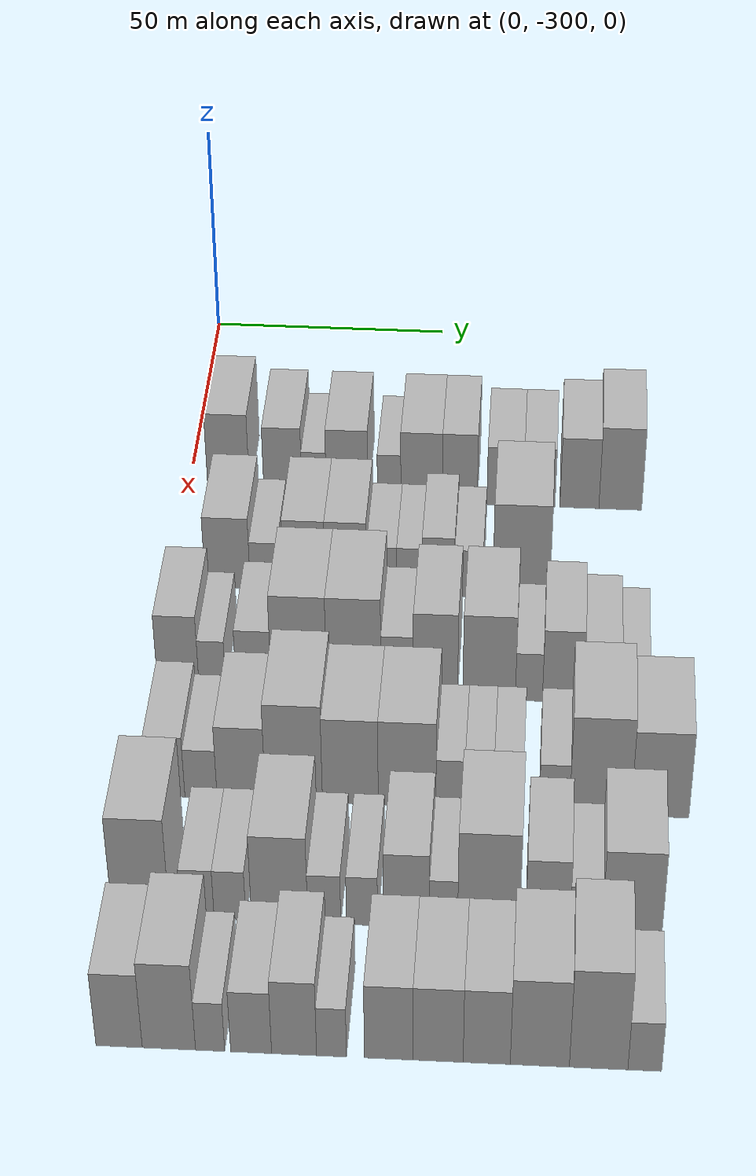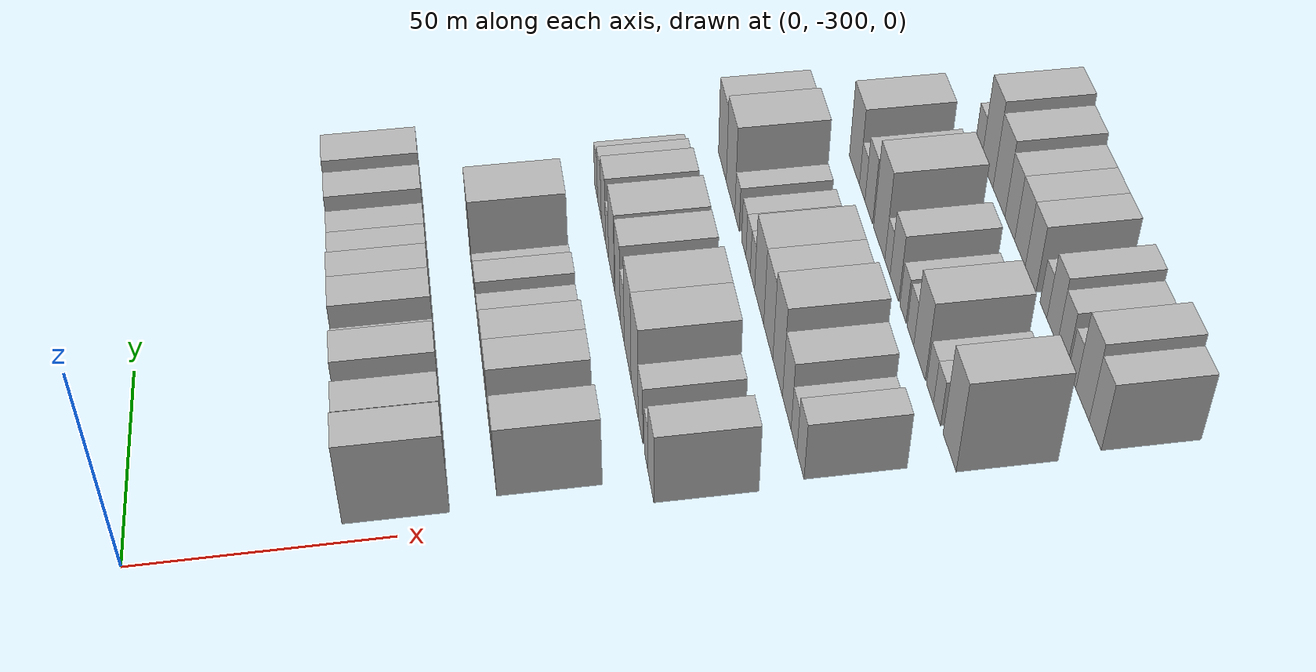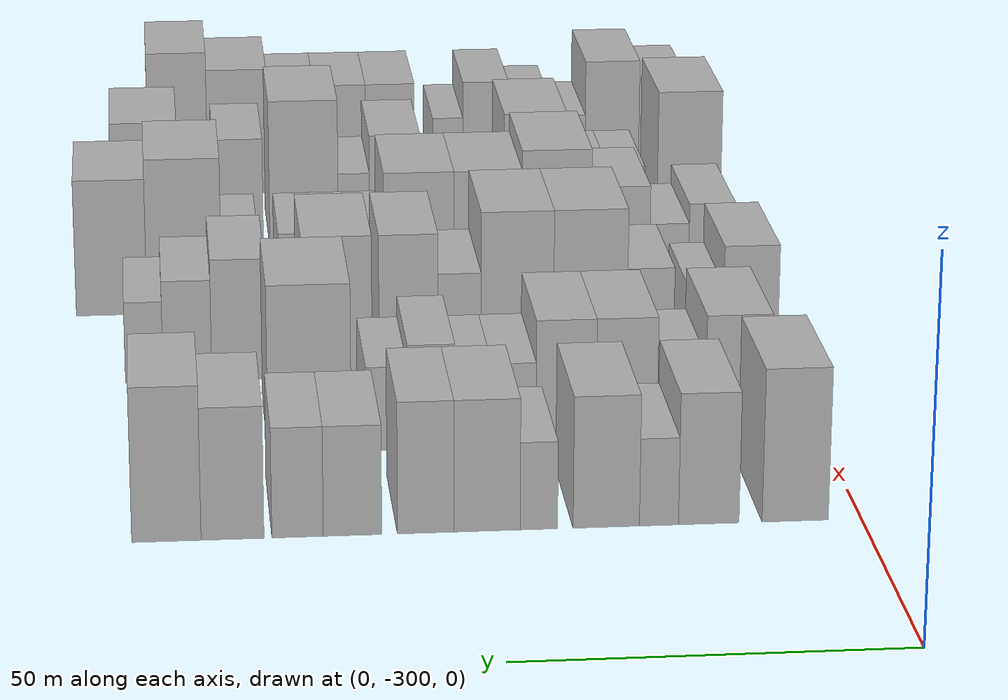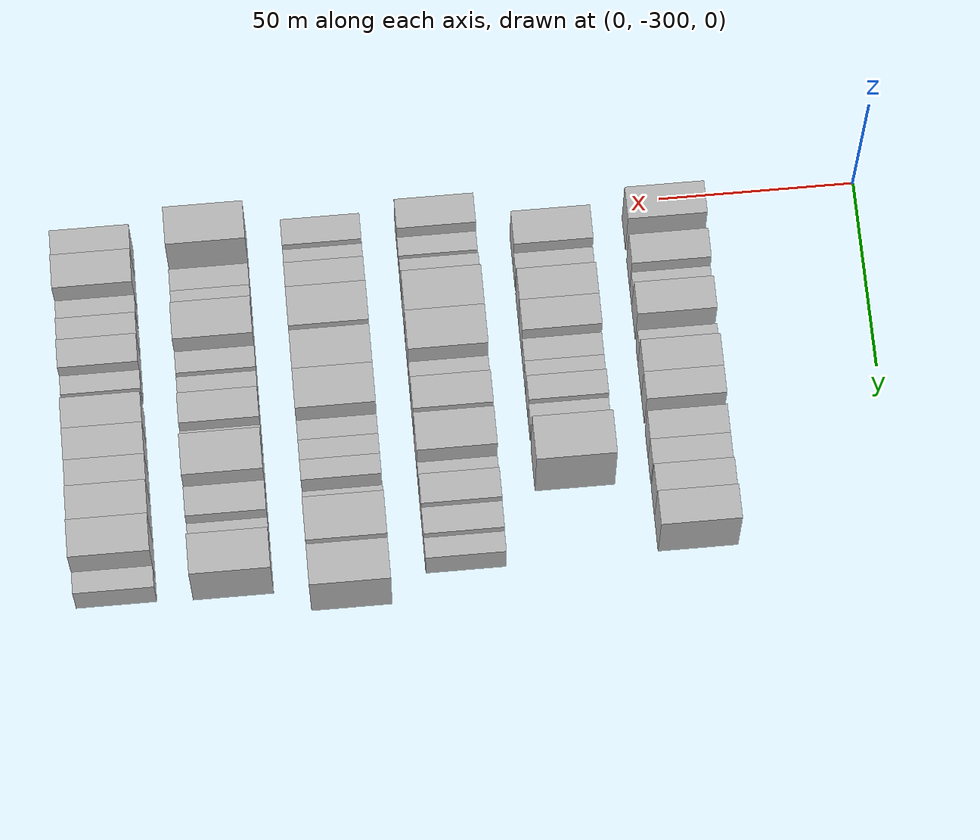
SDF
<sdf version="1.6">
 <world name="default">
  <model name="building_25">
   <static>1</static>
   <pose>50.0000 -291.3003 0 0.000000 0.000000 0.000000</pose>
   <link name="link">
    <pose>0 0 10.50 0 0 0</pose>
    <collision name="collision"><geometry><box><size>20.0000 8.6285 21.0000</size></box></geometry></collision>
    <visual name="visual">
     <cast_shadows>0</cast_shadows>
     <geometry><box><size>20.0000 8.6285 21.0000</size></box></geometry>
     <material>
      <script>
       <uri>model://HANNAS_wall/materials/scripts</uri>
       <uri>model://HANNAS_wall/materials/textures</uri>
       <name>vrc/HANNAS_wall</name>
      </script>
     </material>
    </visual>
   </link>
  </model>
  <model name="building_26">
   <static>1</static>
   <pose>50.0000 -280.0551 0 0.000000 0.000000 0.000000</pose>
   <link name="link">
    <pose>0 0 9.00 0 0 0</pose>
    <collision name="collision"><geometry><box><size>20.0000 7.8619 18.0000</size></box></geometry></collision>
    <visual name="visual">
     <cast_shadows>0</cast_shadows>
     <geometry><box><size>20.0000 7.8619 18.0000</size></box></geometry>
     <material>
      <script>
       <uri>model://HANNAS_wall/materials/scripts</uri>
       <uri>model://HANNAS_wall/materials/textures</uri>
       <name>vrc/HANNAS_wall</name>
      </script>
     </material>
    </visual>
   </link>
  </model>
  <model name="building_27">
   <static>1</static>
   <pose>50.0000 -273.5944 0 0.000000 0.000000 0.000000</pose>
   <link name="link">
    <pose>0 0 6.00 0 0 0</pose>
    <collision name="collision"><geometry><box><size>20.0000 5.0594 12.0000</size></box></geometry></collision>
    <visual name="visual">
     <cast_shadows>0</cast_shadows>
     <geometry><box><size>20.0000 5.0594 12.0000</size></box></geometry>
     <material>
      <script>
       <uri>model://HANNAS_wall/materials/scripts</uri>
       <uri>model://HANNAS_wall/materials/textures</uri>
       <name>vrc/HANNAS_wall</name>
      </script>
     </material>
    </visual>
   </link>
  </model>
  <model name="building_28">
   <static>1</static>
   <pose>50.0000 -266.7744 0 0.000000 0.000000 0.000000</pose>
   <link name="link">
    <pose>0 0 9.00 0 0 0</pose>
    <collision name="collision"><geometry><box><size>20.0000 8.5807 18.0000</size></box></geometry></collision>
    <visual name="visual">
     <cast_shadows>0</cast_shadows>
     <geometry><box><size>20.0000 8.5807 18.0000</size></box></geometry>
     <material>
      <script>
       <uri>model://HANNAS_wall/materials/scripts</uri>
       <uri>model://HANNAS_wall/materials/textures</uri>
       <name>vrc/HANNAS_wall</name>
      </script>
     </material>
    </visual>
   </link>
  </model>
  <model name="building_29">
   <static>1</static>
   <pose>50.0000 -258.0686 0 0.000000 0.000000 0.000000</pose>
   <link name="link">
    <pose>0 0 6.00 0 0 0</pose>
    <collision name="collision"><geometry><box><size>20.0000 4.8308 12.0000</size></box></geometry></collision>
    <visual name="visual">
     <cast_shadows>0</cast_shadows>
     <geometry><box><size>20.0000 4.8308 12.0000</size></box></geometry>
     <material>
      <script>
       <uri>model://HANNAS_wall/materials/scripts</uri>
       <uri>model://HANNAS_wall/materials/textures</uri>
       <name>vrc/HANNAS_wall</name>
      </script>
     </material>
    </visual>
   </link>
  </model>
  <model name="building_30">
   <static>1</static>
   <pose>50.0000 -251.3869 0 0.000000 0.000000 0.000000</pose>
   <link name="link">
    <pose>0 0 9.00 0 0 0</pose>
    <collision name="collision"><geometry><box><size>20.0000 8.5327 18.0000</size></box></geometry></collision>
    <visual name="visual">
     <cast_shadows>0</cast_shadows>
     <geometry><box><size>20.0000 8.5327 18.0000</size></box></geometry>
     <material>
      <script>
       <uri>model://HANNAS_wall/materials/scripts</uri>
       <uri>model://HANNAS_wall/materials/textures</uri>
       <name>vrc/HANNAS_wall</name>
      </script>
     </material>
    </visual>
   </link>
  </model>
  <model name="building_31">
   <static>1</static>
   <pose>50.0000 -243.5036 0 0.000000 0.000000 0.000000</pose>
   <link name="link">
    <pose>0 0 9.00 0 0 0</pose>
    <collision name="collision"><geometry><box><size>20.0000 7.2339 18.0000</size></box></geometry></collision>
    <visual name="visual">
     <cast_shadows>0</cast_shadows>
     <geometry><box><size>20.0000 7.2339 18.0000</size></box></geometry>
     <material>
      <script>
       <uri>model://HANNAS_wall/materials/scripts</uri>
       <uri>model://HANNAS_wall/materials/textures</uri>
       <name>vrc/HANNAS_wall</name>
      </script>
     </material>
    </visual>
   </link>
  </model>
  <model name="building_32">
   <static>1</static>
   <pose>50.0000 -234.1505 0 0.000000 0.000000 0.000000</pose>
   <link name="link">
    <pose>0 0 7.50 0 0 0</pose>
    <collision name="collision"><geometry><box><size>20.0000 7.4723 15.0000</size></box></geometry></collision>
    <visual name="visual">
     <cast_shadows>0</cast_shadows>
     <geometry><box><size>20.0000 7.4723 15.0000</size></box></geometry>
     <material>
      <script>
       <uri>model://HANNAS_wall/materials/scripts</uri>
       <uri>model://HANNAS_wall/materials/textures</uri>
       <name>vrc/HANNAS_wall</name>
      </script>
     </material>
    </visual>
   </link>
  </model>
  <model name="building_33">
   <static>1</static>
   <pose>50.0000 -227.1314 0 0.000000 0.000000 0.000000</pose>
   <link name="link">
    <pose>0 0 7.50 0 0 0</pose>
    <collision name="collision"><geometry><box><size>20.0000 6.5659 15.0000</size></box></geometry></collision>
    <visual name="visual">
     <cast_shadows>0</cast_shadows>
     <geometry><box><size>20.0000 6.5659 15.0000</size></box></geometry>
     <material>
      <script>
       <uri>model://HANNAS_wall/materials/scripts</uri>
       <uri>model://HANNAS_wall/materials/textures</uri>
       <name>vrc/HANNAS_wall</name>
      </script>
     </material>
    </visual>
   </link>
  </model>
  <model name="building_34">
   <static>1</static>
   <pose>50.0000 -218.8408 0 0.000000 0.000000 0.000000</pose>
   <link name="link">
    <pose>0 0 9.00 0 0 0</pose>
    <collision name="collision"><geometry><box><size>20.0000 8.0153 18.0000</size></box></geometry></collision>
    <visual name="visual">
     <cast_shadows>0</cast_shadows>
     <geometry><box><size>20.0000 8.0153 18.0000</size></box></geometry>
     <material>
      <script>
       <uri>model://HANNAS_wall/materials/scripts</uri>
       <uri>model://HANNAS_wall/materials/textures</uri>
       <name>vrc/HANNAS_wall</name>
      </script>
     </material>
    </visual>
   </link>
  </model>
  <model name="building_35">
   <static>1</static>
   <pose>50.0000 -210.4350 0 0.000000 0.000000 0.000000</pose>
   <link name="link">
    <pose>0 0 10.50 0 0 0</pose>
    <collision name="collision"><geometry><box><size>20.0000 8.7961 21.0000</size></box></geometry></collision>
    <visual name="visual">
     <cast_shadows>0</cast_shadows>
     <geometry><box><size>20.0000 8.7961 21.0000</size></box></geometry>
     <material>
      <script>
       <uri>model://HANNAS_wall/materials/scripts</uri>
       <uri>model://HANNAS_wall/materials/textures</uri>
       <name>vrc/HANNAS_wall</name>
      </script>
     </material>
    </visual>
   </link>
  </model>
  <model name="building_140">
   <static>1</static>
   <pose>79.0000 -288.3581 0 0.000000 0.000000 0.000000</pose>
   <link name="link">
    <pose>0 0 9.00 0 0 0</pose>
    <collision name="collision"><geometry><box><size>20.0000 8.9788 18.0000</size></box></geometry></collision>
    <visual name="visual">
     <cast_shadows>0</cast_shadows>
     <geometry><box><size>20.0000 8.9788 18.0000</size></box></geometry>
     <material>
      <script>
       <uri>model://HANNAS_wall/materials/scripts</uri>
       <uri>model://HANNAS_wall/materials/textures</uri>
       <name>vrc/HANNAS_wall</name>
      </script>
     </material>
    </visual>
   </link>
  </model>
  <model name="building_141">
   <static>1</static>
   <pose>79.0000 -281.0769 0 0.000000 0.000000 0.000000</pose>
   <link name="link">
    <pose>0 0 6.00 0 0 0</pose>
    <collision name="collision"><geometry><box><size>20.0000 5.5837 12.0000</size></box></geometry></collision>
    <visual name="visual">
     <cast_shadows>0</cast_shadows>
     <geometry><box><size>20.0000 5.5837 12.0000</size></box></geometry>
     <material>
      <script>
       <uri>model://HANNAS_wall/materials/scripts</uri>
       <uri>model://HANNAS_wall/materials/textures</uri>
       <name>vrc/HANNAS_wall</name>
      </script>
     </material>
    </visual>
   </link>
  </model>
  <model name="building_142">
   <static>1</static>
   <pose>79.0000 -273.1082 0 0.000000 0.000000 0.000000</pose>
   <link name="link">
    <pose>0 0 9.00 0 0 0</pose>
    <collision name="collision"><geometry><box><size>20.0000 8.3537 18.0000</size></box></geometry></collision>
    <visual name="visual">
     <cast_shadows>0</cast_shadows>
     <geometry><box><size>20.0000 8.3537 18.0000</size></box></geometry>
     <material>
      <script>
       <uri>model://HANNAS_wall/materials/scripts</uri>
       <uri>model://HANNAS_wall/materials/textures</uri>
       <name>vrc/HANNAS_wall</name>
      </script>
     </material>
    </visual>
   </link>
  </model>
  <model name="building_143">
   <static>1</static>
   <pose>79.0000 -264.8440 0 0.000000 0.000000 0.000000</pose>
   <link name="link">
    <pose>0 0 9.00 0 0 0</pose>
    <collision name="collision"><geometry><box><size>20.0000 8.1747 18.0000</size></box></geometry></collision>
    <visual name="visual">
     <cast_shadows>0</cast_shadows>
     <geometry><box><size>20.0000 8.1747 18.0000</size></box></geometry>
     <material>
      <script>
       <uri>model://HANNAS_wall/materials/scripts</uri>
       <uri>model://HANNAS_wall/materials/textures</uri>
       <name>vrc/HANNAS_wall</name>
      </script>
     </material>
    </visual>
   </link>
  </model>
  <model name="building_144">
   <static>1</static>
   <pose>79.0000 -257.7608 0 0.000000 0.000000 0.000000</pose>
   <link name="link">
    <pose>0 0 6.00 0 0 0</pose>
    <collision name="collision"><geometry><box><size>20.0000 5.9917 12.0000</size></box></geometry></collision>
    <visual name="visual">
     <cast_shadows>0</cast_shadows>
     <geometry><box><size>20.0000 5.9917 12.0000</size></box></geometry>
     <material>
      <script>
       <uri>model://HANNAS_wall/materials/scripts</uri>
       <uri>model://HANNAS_wall/materials/textures</uri>
       <name>vrc/HANNAS_wall</name>
      </script>
     </material>
    </visual>
   </link>
  </model>
  <model name="building_145">
   <static>1</static>
   <pose>79.0000 -252.2550 0 0.000000 0.000000 0.000000</pose>
   <link name="link">
    <pose>0 0 6.00 0 0 0</pose>
    <collision name="collision"><geometry><box><size>20.0000 5.0199 12.0000</size></box></geometry></collision>
    <visual name="visual">
     <cast_shadows>0</cast_shadows>
     <geometry><box><size>20.0000 5.0199 12.0000</size></box></geometry>
     <material>
      <script>
       <uri>model://HANNAS_wall/materials/scripts</uri>
       <uri>model://HANNAS_wall/materials/textures</uri>
       <name>vrc/HANNAS_wall</name>
      </script>
     </material>
    </visual>
   </link>
  </model>
  <model name="building_146">
   <static>1</static>
   <pose>79.0000 -246.5415 0 0.000000 0.000000 0.000000</pose>
   <link name="link">
    <pose>0 0 7.50 0 0 0</pose>
    <collision name="collision"><geometry><box><size>20.0000 6.4070 15.0000</size></box></geometry></collision>
    <visual name="visual">
     <cast_shadows>0</cast_shadows>
     <geometry><box><size>20.0000 6.4070 15.0000</size></box></geometry>
     <material>
      <script>
       <uri>model://HANNAS_wall/materials/scripts</uri>
       <uri>model://HANNAS_wall/materials/textures</uri>
       <name>vrc/HANNAS_wall</name>
      </script>
     </material>
    </visual>
   </link>
  </model>
  <model name="building_147">
   <static>1</static>
   <pose>79.0000 -240.5324 0 0.000000 0.000000 0.000000</pose>
   <link name="link">
    <pose>0 0 6.00 0 0 0</pose>
    <collision name="collision"><geometry><box><size>20.0000 5.6112 12.0000</size></box></geometry></collision>
    <visual name="visual">
     <cast_shadows>0</cast_shadows>
     <geometry><box><size>20.0000 5.6112 12.0000</size></box></geometry>
     <material>
      <script>
       <uri>model://HANNAS_wall/materials/scripts</uri>
       <uri>model://HANNAS_wall/materials/textures</uri>
       <name>vrc/HANNAS_wall</name>
      </script>
     </material>
    </visual>
   </link>
  </model>
  <model name="building_148">
   <static>1</static>
   <pose>79.0000 -230.1031 0 0.000000 0.000000 0.000000</pose>
   <link name="link">
    <pose>0 0 12.00 0 0 0</pose>
    <collision name="collision"><geometry><box><size>20.0000 11.2473 24.0000</size></box></geometry></collision>
    <visual name="visual">
     <cast_shadows>0</cast_shadows>
     <geometry><box><size>20.0000 11.2473 24.0000</size></box></geometry>
     <material>
      <script>
       <uri>model://HANNAS_wall/materials/scripts</uri>
       <uri>model://HANNAS_wall/materials/textures</uri>
       <name>vrc/HANNAS_wall</name>
      </script>
     </material>
    </visual>
   </link>
  </model>
  <model name="building_255">
   <static>1</static>
   <pose>108.0000 -294.6902 0 0.000000 0.000000 0.000000</pose>
   <link name="link">
    <pose>0 0 9.00 0 0 0</pose>
    <collision name="collision"><geometry><box><size>20.0000 7.9438 18.0000</size></box></geometry></collision>
    <visual name="visual">
     <cast_shadows>0</cast_shadows>
     <geometry><box><size>20.0000 7.9438 18.0000</size></box></geometry>
     <material>
      <script>
       <uri>model://HANNAS_wall/materials/scripts</uri>
       <uri>model://HANNAS_wall/materials/textures</uri>
       <name>vrc/HANNAS_wall</name>
      </script>
     </material>
    </visual>
   </link>
  </model>
  <model name="building_256">
   <static>1</static>
   <pose>108.0000 -288.1647 0 0.000000 0.000000 0.000000</pose>
   <link name="link">
    <pose>0 0 6.00 0 0 0</pose>
    <collision name="collision"><geometry><box><size>20.0000 5.1073 12.0000</size></box></geometry></collision>
    <visual name="visual">
     <cast_shadows>0</cast_shadows>
     <geometry><box><size>20.0000 5.1073 12.0000</size></box></geometry>
     <material>
      <script>
       <uri>model://HANNAS_wall/materials/scripts</uri>
       <uri>model://HANNAS_wall/materials/textures</uri>
       <name>vrc/HANNAS_wall</name>
      </script>
     </material>
    </visual>
   </link>
  </model>
  <model name="building_257">
   <static>1</static>
   <pose>108.0000 -280.2494 0 0.000000 0.000000 0.000000</pose>
   <link name="link">
    <pose>0 0 7.50 0 0 0</pose>
    <collision name="collision"><geometry><box><size>20.0000 6.7231 15.0000</size></box></geometry></collision>
    <visual name="visual">
     <cast_shadows>0</cast_shadows>
     <geometry><box><size>20.0000 6.7231 15.0000</size></box></geometry>
     <material>
      <script>
       <uri>model://HANNAS_wall/materials/scripts</uri>
       <uri>model://HANNAS_wall/materials/textures</uri>
       <name>vrc/HANNAS_wall</name>
      </script>
     </material>
    </visual>
   </link>
  </model>
  <model name="building_258">
   <static>1</static>
   <pose>108.0000 -271.6056 0 0.000000 0.000000 0.000000</pose>
   <link name="link">
    <pose>0 0 12.00 0 0 0</pose>
    <collision name="collision"><geometry><box><size>20.0000 10.5645 24.0000</size></box></geometry></collision>
    <visual name="visual">
     <cast_shadows>0</cast_shadows>
     <geometry><box><size>20.0000 10.5645 24.0000</size></box></geometry>
     <material>
      <script>
       <uri>model://HANNAS_wall/materials/scripts</uri>
       <uri>model://HANNAS_wall/materials/textures</uri>
       <name>vrc/HANNAS_wall</name>
      </script>
     </material>
    </visual>
   </link>
  </model>
  <model name="building_259">
   <static>1</static>
   <pose>108.0000 -261.1431 0 0.000000 0.000000 0.000000</pose>
   <link name="link">
    <pose>0 0 12.00 0 0 0</pose>
    <collision name="collision"><geometry><box><size>20.0000 10.3607 24.0000</size></box></geometry></collision>
    <visual name="visual">
     <cast_shadows>0</cast_shadows>
     <geometry><box><size>20.0000 10.3607 24.0000</size></box></geometry>
     <material>
      <script>
       <uri>model://HANNAS_wall/materials/scripts</uri>
       <uri>model://HANNAS_wall/materials/textures</uri>
       <name>vrc/HANNAS_wall</name>
      </script>
     </material>
    </visual>
   </link>
  </model>
  <model name="building_260">
   <static>1</static>
   <pose>108.0000 -252.8995 0 0.000000 0.000000 0.000000</pose>
   <link name="link">
    <pose>0 0 7.50 0 0 0</pose>
    <collision name="collision"><geometry><box><size>20.0000 6.1264 15.0000</size></box></geometry></collision>
    <visual name="visual">
     <cast_shadows>0</cast_shadows>
     <geometry><box><size>20.0000 6.1264 15.0000</size></box></geometry>
     <material>
      <script>
       <uri>model://HANNAS_wall/materials/scripts</uri>
       <uri>model://HANNAS_wall/materials/textures</uri>
       <name>vrc/HANNAS_wall</name>
      </script>
     </material>
    </visual>
   </link>
  </model>
  <model name="building_261">
   <static>1</static>
   <pose>108.0000 -245.6276 0 0.000000 0.000000 0.000000</pose>
   <link name="link">
    <pose>0 0 10.50 0 0 0</pose>
    <collision name="collision"><geometry><box><size>20.0000 8.4173 21.0000</size></box></geometry></collision>
    <visual name="visual">
     <cast_shadows>0</cast_shadows>
     <geometry><box><size>20.0000 8.4173 21.0000</size></box></geometry>
     <material>
      <script>
       <uri>model://HANNAS_wall/materials/scripts</uri>
       <uri>model://HANNAS_wall/materials/textures</uri>
       <name>vrc/HANNAS_wall</name>
      </script>
     </material>
    </visual>
   </link>
  </model>
  <model name="building_262">
   <static>1</static>
   <pose>108.0000 -235.4353 0 0.000000 0.000000 0.000000</pose>
   <link name="link">
    <pose>0 0 10.50 0 0 0</pose>
    <collision name="collision"><geometry><box><size>20.0000 9.9673 21.0000</size></box></geometry></collision>
    <visual name="visual">
     <cast_shadows>0</cast_shadows>
     <geometry><box><size>20.0000 9.9673 21.0000</size></box></geometry>
     <material>
      <script>
       <uri>model://HANNAS_wall/materials/scripts</uri>
       <uri>model://HANNAS_wall/materials/textures</uri>
       <name>vrc/HANNAS_wall</name>
      </script>
     </material>
    </visual>
   </link>
  </model>
  <model name="building_263">
   <static>1</static>
   <pose>108.0000 -227.8886 0 0.000000 0.000000 0.000000</pose>
   <link name="link">
    <pose>0 0 6.00 0 0 0</pose>
    <collision name="collision"><geometry><box><size>20.0000 5.1261 12.0000</size></box></geometry></collision>
    <visual name="visual">
     <cast_shadows>0</cast_shadows>
     <geometry><box><size>20.0000 5.1261 12.0000</size></box></geometry>
     <material>
      <script>
       <uri>model://HANNAS_wall/materials/scripts</uri>
       <uri>model://HANNAS_wall/materials/textures</uri>
       <name>vrc/HANNAS_wall</name>
      </script>
     </material>
    </visual>
   </link>
  </model>
  <model name="building_264">
   <static>1</static>
   <pose>108.0000 -221.4783 0 0.000000 0.000000 0.000000</pose>
   <link name="link">
    <pose>0 0 9.00 0 0 0</pose>
    <collision name="collision"><geometry><box><size>20.0000 7.6946 18.0000</size></box></geometry></collision>
    <visual name="visual">
     <cast_shadows>0</cast_shadows>
     <geometry><box><size>20.0000 7.6946 18.0000</size></box></geometry>
     <material>
      <script>
       <uri>model://HANNAS_wall/materials/scripts</uri>
       <uri>model://HANNAS_wall/materials/textures</uri>
       <name>vrc/HANNAS_wall</name>
      </script>
     </material>
    </visual>
   </link>
  </model>
  <model name="building_265">
   <static>1</static>
   <pose>108.0000 -214.1854 0 0.000000 0.000000 0.000000</pose>
   <link name="link">
    <pose>0 0 7.50 0 0 0</pose>
    <collision name="collision"><geometry><box><size>20.0000 6.8912 15.0000</size></box></geometry></collision>
    <visual name="visual">
     <cast_shadows>0</cast_shadows>
     <geometry><box><size>20.0000 6.8912 15.0000</size></box></geometry>
     <material>
      <script>
       <uri>model://HANNAS_wall/materials/scripts</uri>
       <uri>model://HANNAS_wall/materials/textures</uri>
       <name>vrc/HANNAS_wall</name>
      </script>
     </material>
    </visual>
   </link>
  </model>
  <model name="building_266">
   <static>1</static>
   <pose>108.0000 -208.0779 0 0.000000 0.000000 0.000000</pose>
   <link name="link">
    <pose>0 0 6.00 0 0 0</pose>
    <collision name="collision"><geometry><box><size>20.0000 5.3237 12.0000</size></box></geometry></collision>
    <visual name="visual">
     <cast_shadows>0</cast_shadows>
     <geometry><box><size>20.0000 5.3237 12.0000</size></box></geometry>
     <material>
      <script>
       <uri>model://HANNAS_wall/materials/scripts</uri>
       <uri>model://HANNAS_wall/materials/textures</uri>
       <name>vrc/HANNAS_wall</name>
      </script>
     </material>
    </visual>
   </link>
  </model>
  <model name="building_369">
   <static>1</static>
   <pose>137.0000 -293.4158 0 0.000000 0.000000 0.000000</pose>
   <link name="link">
    <pose>0 0 7.50 0 0 0</pose>
    <collision name="collision"><geometry><box><size>20.0000 6.9772 15.0000</size></box></geometry></collision>
    <visual name="visual">
     <cast_shadows>0</cast_shadows>
     <geometry><box><size>20.0000 6.9772 15.0000</size></box></geometry>
     <material>
      <script>
       <uri>model://HANNAS_wall/materials/scripts</uri>
       <uri>model://HANNAS_wall/materials/textures</uri>
       <name>vrc/HANNAS_wall</name>
      </script>
     </material>
    </visual>
   </link>
  </model>
  <model name="building_370">
   <static>1</static>
   <pose>137.0000 -286.9778 0 0.000000 0.000000 0.000000</pose>
   <link name="link">
    <pose>0 0 6.00 0 0 0</pose>
    <collision name="collision"><geometry><box><size>20.0000 5.8988 12.0000</size></box></geometry></collision>
    <visual name="visual">
     <cast_shadows>0</cast_shadows>
     <geometry><box><size>20.0000 5.8988 12.0000</size></box></geometry>
     <material>
      <script>
       <uri>model://HANNAS_wall/materials/scripts</uri>
       <uri>model://HANNAS_wall/materials/textures</uri>
       <name>vrc/HANNAS_wall</name>
      </script>
     </material>
    </visual>
   </link>
  </model>
  <model name="building_371">
   <static>1</static>
   <pose>137.0000 -279.5948 0 0.000000 0.000000 0.000000</pose>
   <link name="link">
    <pose>0 0 9.00 0 0 0</pose>
    <collision name="collision"><geometry><box><size>20.0000 8.8674 18.0000</size></box></geometry></collision>
    <visual name="visual">
     <cast_shadows>0</cast_shadows>
     <geometry><box><size>20.0000 8.8674 18.0000</size></box></geometry>
     <material>
      <script>
       <uri>model://HANNAS_wall/materials/scripts</uri>
       <uri>model://HANNAS_wall/materials/textures</uri>
       <name>vrc/HANNAS_wall</name>
      </script>
     </material>
    </visual>
   </link>
  </model>
  <model name="building_372">
   <static>1</static>
   <pose>137.0000 -269.9520 0 0.000000 0.000000 0.000000</pose>
   <link name="link">
    <pose>0 0 12.00 0 0 0</pose>
    <collision name="collision"><geometry><box><size>20.0000 10.4182 24.0000</size></box></geometry></collision>
    <visual name="visual">
     <cast_shadows>0</cast_shadows>
     <geometry><box><size>20.0000 10.4182 24.0000</size></box></geometry>
     <material>
      <script>
       <uri>model://HANNAS_wall/materials/scripts</uri>
       <uri>model://HANNAS_wall/materials/textures</uri>
       <name>vrc/HANNAS_wall</name>
      </script>
     </material>
    </visual>
   </link>
  </model>
  <model name="building_373">
   <static>1</static>
   <pose>137.0000 -259.6535 0 0.000000 0.000000 0.000000</pose>
   <link name="link">
    <pose>0 0 10.50 0 0 0</pose>
    <collision name="collision"><geometry><box><size>20.0000 10.1789 21.0000</size></box></geometry></collision>
    <visual name="visual">
     <cast_shadows>0</cast_shadows>
     <geometry><box><size>20.0000 10.1789 21.0000</size></box></geometry>
     <material>
      <script>
       <uri>model://HANNAS_wall/materials/scripts</uri>
       <uri>model://HANNAS_wall/materials/textures</uri>
       <name>vrc/HANNAS_wall</name>
      </script>
     </material>
    </visual>
   </link>
  </model>
  <model name="building_374">
   <static>1</static>
   <pose>137.0000 -249.3249 0 0.000000 0.000000 0.000000</pose>
   <link name="link">
    <pose>0 0 10.50 0 0 0</pose>
    <collision name="collision"><geometry><box><size>20.0000 10.4783 21.0000</size></box></geometry></collision>
    <visual name="visual">
     <cast_shadows>0</cast_shadows>
     <geometry><box><size>20.0000 10.4783 21.0000</size></box></geometry>
     <material>
      <script>
       <uri>model://HANNAS_wall/materials/scripts</uri>
       <uri>model://HANNAS_wall/materials/textures</uri>
       <name>vrc/HANNAS_wall</name>
      </script>
     </material>
    </visual>
   </link>
  </model>
  <model name="building_375">
   <static>1</static>
   <pose>137.0000 -241.4987 0 0.000000 0.000000 0.000000</pose>
   <link name="link">
    <pose>0 0 6.00 0 0 0</pose>
    <collision name="collision"><geometry><box><size>20.0000 5.1742 12.0000</size></box></geometry></collision>
    <visual name="visual">
     <cast_shadows>0</cast_shadows>
     <geometry><box><size>20.0000 5.1742 12.0000</size></box></geometry>
     <material>
      <script>
       <uri>model://HANNAS_wall/materials/scripts</uri>
       <uri>model://HANNAS_wall/materials/textures</uri>
       <name>vrc/HANNAS_wall</name>
      </script>
     </material>
    </visual>
   </link>
  </model>
  <model name="building_376">
   <static>1</static>
   <pose>137.0000 -236.2942 0 0.000000 0.000000 0.000000</pose>
   <link name="link">
    <pose>0 0 6.00 0 0 0</pose>
    <collision name="collision"><geometry><box><size>20.0000 5.2347 12.0000</size></box></geometry></collision>
    <visual name="visual">
     <cast_shadows>0</cast_shadows>
     <geometry><box><size>20.0000 5.2347 12.0000</size></box></geometry>
     <material>
      <script>
       <uri>model://HANNAS_wall/materials/scripts</uri>
       <uri>model://HANNAS_wall/materials/textures</uri>
       <name>vrc/HANNAS_wall</name>
      </script>
     </material>
    </visual>
   </link>
  </model>
  <model name="building_377">
   <static>1</static>
   <pose>137.0000 -231.0191 0 0.000000 0.000000 0.000000</pose>
   <link name="link">
    <pose>0 0 6.00 0 0 0</pose>
    <collision name="collision"><geometry><box><size>20.0000 5.3155 12.0000</size></box></geometry></collision>
    <visual name="visual">
     <cast_shadows>0</cast_shadows>
     <geometry><box><size>20.0000 5.3155 12.0000</size></box></geometry>
     <material>
      <script>
       <uri>model://HANNAS_wall/materials/scripts</uri>
       <uri>model://HANNAS_wall/materials/textures</uri>
       <name>vrc/HANNAS_wall</name>
      </script>
     </material>
    </visual>
   </link>
  </model>
  <model name="building_378">
   <static>1</static>
   <pose>137.0000 -222.6100 0 0.000000 0.000000 0.000000</pose>
   <link name="link">
    <pose>0 0 6.00 0 0 0</pose>
    <collision name="collision"><geometry><box><size>20.0000 5.5027 12.0000</size></box></geometry></collision>
    <visual name="visual">
     <cast_shadows>0</cast_shadows>
     <geometry><box><size>20.0000 5.5027 12.0000</size></box></geometry>
     <material>
      <script>
       <uri>model://HANNAS_wall/materials/scripts</uri>
       <uri>model://HANNAS_wall/materials/textures</uri>
       <name>vrc/HANNAS_wall</name>
      </script>
     </material>
    </visual>
   </link>
  </model>
  <model name="building_379">
   <static>1</static>
   <pose>137.0000 -214.2834 0 0.000000 0.000000 0.000000</pose>
   <link name="link">
    <pose>0 0 12.00 0 0 0</pose>
    <collision name="collision"><geometry><box><size>20.0000 11.1505 24.0000</size></box></geometry></collision>
    <visual name="visual">
     <cast_shadows>0</cast_shadows>
     <geometry><box><size>20.0000 11.1505 24.0000</size></box></geometry>
     <material>
      <script>
       <uri>model://HANNAS_wall/materials/scripts</uri>
       <uri>model://HANNAS_wall/materials/textures</uri>
       <name>vrc/HANNAS_wall</name>
      </script>
     </material>
    </visual>
   </link>
  </model>
  <model name="building_380">
   <static>1</static>
   <pose>137.0000 -203.4653 0 0.000000 0.000000 0.000000</pose>
   <link name="link">
    <pose>0 0 10.50 0 0 0</pose>
    <collision name="collision"><geometry><box><size>20.0000 10.4857 21.0000</size></box></geometry></collision>
    <visual name="visual">
     <cast_shadows>0</cast_shadows>
     <geometry><box><size>20.0000 10.4857 21.0000</size></box></geometry>
     <material>
      <script>
       <uri>model://HANNAS_wall/materials/scripts</uri>
       <uri>model://HANNAS_wall/materials/textures</uri>
       <name>vrc/HANNAS_wall</name>
      </script>
     </material>
    </visual>
   </link>
  </model>
  <model name="building_480">
   <static>1</static>
   <pose>166.0000 -294.1516 0 0.000000 0.000000 0.000000</pose>
   <link name="link">
    <pose>0 0 12.00 0 0 0</pose>
    <collision name="collision"><geometry><box><size>20.0000 10.0787 24.0000</size></box></geometry></collision>
    <visual name="visual">
     <cast_shadows>0</cast_shadows>
     <geometry><box><size>20.0000 10.0787 24.0000</size></box></geometry>
     <material>
      <script>
       <uri>model://HANNAS_wall/materials/scripts</uri>
       <uri>model://HANNAS_wall/materials/textures</uri>
       <name>vrc/HANNAS_wall</name>
      </script>
     </material>
    </visual>
   </link>
  </model>
  <model name="building_481">
   <static>1</static>
   <pose>166.0000 -284.2027 0 0.000000 0.000000 0.000000</pose>
   <link name="link">
    <pose>0 0 6.00 0 0 0</pose>
    <collision name="collision"><geometry><box><size>20.0000 5.8191 12.0000</size></box></geometry></collision>
    <visual name="visual">
     <cast_shadows>0</cast_shadows>
     <geometry><box><size>20.0000 5.8191 12.0000</size></box></geometry>
     <material>
      <script>
       <uri>model://HANNAS_wall/materials/scripts</uri>
       <uri>model://HANNAS_wall/materials/textures</uri>
       <name>vrc/HANNAS_wall</name>
      </script>
     </material>
    </visual>
   </link>
  </model>
  <model name="building_482">
   <static>1</static>
   <pose>166.0000 -278.5157 0 0.000000 0.000000 0.000000</pose>
   <link name="link">
    <pose>0 0 6.00 0 0 0</pose>
    <collision name="collision"><geometry><box><size>20.0000 5.5551 12.0000</size></box></geometry></collision>
    <visual name="visual">
     <cast_shadows>0</cast_shadows>
     <geometry><box><size>20.0000 5.5551 12.0000</size></box></geometry>
     <material>
      <script>
       <uri>model://HANNAS_wall/materials/scripts</uri>
       <uri>model://HANNAS_wall/materials/textures</uri>
       <name>vrc/HANNAS_wall</name>
      </script>
     </material>
    </visual>
   </link>
  </model>
  <model name="building_483">
   <static>1</static>
   <pose>166.0000 -269.8309 0 0.000000 0.000000 0.000000</pose>
   <link name="link">
    <pose>0 0 10.50 0 0 0</pose>
    <collision name="collision"><geometry><box><size>20.0000 9.8145 21.0000</size></box></geometry></collision>
    <visual name="visual">
     <cast_shadows>0</cast_shadows>
     <geometry><box><size>20.0000 9.8145 21.0000</size></box></geometry>
     <material>
      <script>
       <uri>model://HANNAS_wall/materials/scripts</uri>
       <uri>model://HANNAS_wall/materials/textures</uri>
       <name>vrc/HANNAS_wall</name>
      </script>
     </material>
    </visual>
   </link>
  </model>
  <model name="building_484">
   <static>1</static>
   <pose>166.0000 -262.0506 0 0.000000 0.000000 0.000000</pose>
   <link name="link">
    <pose>0 0 6.00 0 0 0</pose>
    <collision name="collision"><geometry><box><size>20.0000 5.7460 12.0000</size></box></geometry></collision>
    <visual name="visual">
     <cast_shadows>0</cast_shadows>
     <geometry><box><size>20.0000 5.7460 12.0000</size></box></geometry>
     <material>
      <script>
       <uri>model://HANNAS_wall/materials/scripts</uri>
       <uri>model://HANNAS_wall/materials/textures</uri>
       <name>vrc/HANNAS_wall</name>
      </script>
     </material>
    </visual>
   </link>
  </model>
  <model name="building_485">
   <static>1</static>
   <pose>166.0000 -255.4725 0 0.000000 0.000000 0.000000</pose>
   <link name="link">
    <pose>0 0 6.00 0 0 0</pose>
    <collision name="collision"><geometry><box><size>20.0000 5.4102 12.0000</size></box></geometry></collision>
    <visual name="visual">
     <cast_shadows>0</cast_shadows>
     <geometry><box><size>20.0000 5.4102 12.0000</size></box></geometry>
     <material>
      <script>
       <uri>model://HANNAS_wall/materials/scripts</uri>
       <uri>model://HANNAS_wall/materials/textures</uri>
       <name>vrc/HANNAS_wall</name>
      </script>
     </material>
    </visual>
   </link>
  </model>
  <model name="building_486">
   <static>1</static>
   <pose>166.0000 -247.7785 0 0.000000 0.000000 0.000000</pose>
   <link name="link">
    <pose>0 0 9.00 0 0 0</pose>
    <collision name="collision"><geometry><box><size>20.0000 7.9778 18.0000</size></box></geometry></collision>
    <visual name="visual">
     <cast_shadows>0</cast_shadows>
     <geometry><box><size>20.0000 7.9778 18.0000</size></box></geometry>
     <material>
      <script>
       <uri>model://HANNAS_wall/materials/scripts</uri>
       <uri>model://HANNAS_wall/materials/textures</uri>
       <name>vrc/HANNAS_wall</name>
      </script>
     </material>
    </visual>
   </link>
  </model>
  <model name="building_487">
   <static>1</static>
   <pose>166.0000 -241.3306 0 0.000000 0.000000 0.000000</pose>
   <link name="link">
    <pose>0 0 6.00 0 0 0</pose>
    <collision name="collision"><geometry><box><size>20.0000 4.9182 12.0000</size></box></geometry></collision>
    <visual name="visual">
     <cast_shadows>0</cast_shadows>
     <geometry><box><size>20.0000 4.9182 12.0000</size></box></geometry>
     <material>
      <script>
       <uri>model://HANNAS_wall/materials/scripts</uri>
       <uri>model://HANNAS_wall/materials/textures</uri>
       <name>vrc/HANNAS_wall</name>
      </script>
     </material>
    </visual>
   </link>
  </model>
  <model name="building_488">
   <static>1</static>
   <pose>166.0000 -233.5033 0 0.000000 0.000000 0.000000</pose>
   <link name="link">
    <pose>0 0 12.00 0 0 0</pose>
    <collision name="collision"><geometry><box><size>20.0000 10.7364 24.0000</size></box></geometry></collision>
    <visual name="visual">
     <cast_shadows>0</cast_shadows>
     <geometry><box><size>20.0000 10.7364 24.0000</size></box></geometry>
     <material>
      <script>
       <uri>model://HANNAS_wall/materials/scripts</uri>
       <uri>model://HANNAS_wall/materials/textures</uri>
       <name>vrc/HANNAS_wall</name>
      </script>
     </material>
    </visual>
   </link>
  </model>
  <model name="building_489">
   <static>1</static>
   <pose>166.0000 -223.3212 0 0.000000 0.000000 0.000000</pose>
   <link name="link">
    <pose>0 0 9.00 0 0 0</pose>
    <collision name="collision"><geometry><box><size>20.0000 7.6277 18.0000</size></box></geometry></collision>
    <visual name="visual">
     <cast_shadows>0</cast_shadows>
     <geometry><box><size>20.0000 7.6277 18.0000</size></box></geometry>
     <material>
      <script>
       <uri>model://HANNAS_wall/materials/scripts</uri>
       <uri>model://HANNAS_wall/materials/textures</uri>
       <name>vrc/HANNAS_wall</name>
      </script>
     </material>
    </visual>
   </link>
  </model>
  <model name="building_490">
   <static>1</static>
   <pose>166.0000 -216.7046 0 0.000000 0.000000 0.000000</pose>
   <link name="link">
    <pose>0 0 6.00 0 0 0</pose>
    <collision name="collision"><geometry><box><size>20.0000 5.6055 12.0000</size></box></geometry></collision>
    <visual name="visual">
     <cast_shadows>0</cast_shadows>
     <geometry><box><size>20.0000 5.6055 12.0000</size></box></geometry>
     <material>
      <script>
       <uri>model://HANNAS_wall/materials/scripts</uri>
       <uri>model://HANNAS_wall/materials/textures</uri>
       <name>vrc/HANNAS_wall</name>
      </script>
     </material>
    </visual>
   </link>
  </model>
  <model name="building_491">
   <static>1</static>
   <pose>166.0000 -208.7215 0 0.000000 0.000000 0.000000</pose>
   <link name="link">
    <pose>0 0 10.50 0 0 0</pose>
    <collision name="collision"><geometry><box><size>20.0000 10.3606 21.0000</size></box></geometry></collision>
    <visual name="visual">
     <cast_shadows>0</cast_shadows>
     <geometry><box><size>20.0000 10.3606 21.0000</size></box></geometry>
     <material>
      <script>
       <uri>model://HANNAS_wall/materials/scripts</uri>
       <uri>model://HANNAS_wall/materials/textures</uri>
       <name>vrc/HANNAS_wall</name>
      </script>
     </material>
    </visual>
   </link>
  </model>
  <model name="building_596">
   <static>1</static>
   <pose>195.0000 -293.9093 0 0.000000 0.000000 0.000000</pose>
   <link name="link">
    <pose>0 0 9.00 0 0 0</pose>
    <collision name="collision"><geometry><box><size>20.0000 7.7480 18.0000</size></box></geometry></collision>
    <visual name="visual">
     <cast_shadows>0</cast_shadows>
     <geometry><box><size>20.0000 7.7480 18.0000</size></box></geometry>
     <material>
      <script>
       <uri>model://HANNAS_wall/materials/scripts</uri>
       <uri>model://HANNAS_wall/materials/textures</uri>
       <name>vrc/HANNAS_wall</name>
      </script>
     </material>
    </visual>
   </link>
  </model>
  <model name="building_597">
   <static>1</static>
   <pose>195.0000 -285.5854 0 0.000000 0.000000 0.000000</pose>
   <link name="link">
    <pose>0 0 10.50 0 0 0</pose>
    <collision name="collision"><geometry><box><size>20.0000 8.8998 21.0000</size></box></geometry></collision>
    <visual name="visual">
     <cast_shadows>0</cast_shadows>
     <geometry><box><size>20.0000 8.8998 21.0000</size></box></geometry>
     <material>
      <script>
       <uri>model://HANNAS_wall/materials/scripts</uri>
       <uri>model://HANNAS_wall/materials/textures</uri>
       <name>vrc/HANNAS_wall</name>
      </script>
     </material>
    </visual>
   </link>
  </model>
  <model name="building_598">
   <static>1</static>
   <pose>195.0000 -278.7069 0 0.000000 0.000000 0.000000</pose>
   <link name="link">
    <pose>0 0 6.00 0 0 0</pose>
    <collision name="collision"><geometry><box><size>20.0000 4.8574 12.0000</size></box></geometry></collision>
    <visual name="visual">
     <cast_shadows>0</cast_shadows>
     <geometry><box><size>20.0000 4.8574 12.0000</size></box></geometry>
     <material>
      <script>
       <uri>model://HANNAS_wall/materials/scripts</uri>
       <uri>model://HANNAS_wall/materials/textures</uri>
       <name>vrc/HANNAS_wall</name>
      </script>
     </material>
    </visual>
   </link>
  </model>
  <model name="building_599">
   <static>1</static>
   <pose>195.0000 -271.8673 0 0.000000 0.000000 0.000000</pose>
   <link name="link">
    <pose>0 0 7.50 0 0 0</pose>
    <collision name="collision"><geometry><box><size>20.0000 6.8217 15.0000</size></box></geometry></collision>
    <visual name="visual">
     <cast_shadows>0</cast_shadows>
     <geometry><box><size>20.0000 6.8217 15.0000</size></box></geometry>
     <material>
      <script>
       <uri>model://HANNAS_wall/materials/scripts</uri>
       <uri>model://HANNAS_wall/materials/textures</uri>
       <name>vrc/HANNAS_wall</name>
      </script>
     </material>
    </visual>
   </link>
  </model>
  <model name="building_600">
   <static>1</static>
   <pose>195.0000 -264.7143 0 0.000000 0.000000 0.000000</pose>
   <link name="link">
    <pose>0 0 9.00 0 0 0</pose>
    <collision name="collision"><geometry><box><size>20.0000 7.4843 18.0000</size></box></geometry></collision>
    <visual name="visual">
     <cast_shadows>0</cast_shadows>
     <geometry><box><size>20.0000 7.4843 18.0000</size></box></geometry>
     <material>
      <script>
       <uri>model://HANNAS_wall/materials/scripts</uri>
       <uri>model://HANNAS_wall/materials/textures</uri>
       <name>vrc/HANNAS_wall</name>
      </script>
     </material>
    </visual>
   </link>
  </model>
  <model name="building_601">
   <static>1</static>
   <pose>195.0000 -258.4929 0 0.000000 0.000000 0.000000</pose>
   <link name="link">
    <pose>0 0 6.00 0 0 0</pose>
    <collision name="collision"><geometry><box><size>20.0000 4.9584 12.0000</size></box></geometry></collision>
    <visual name="visual">
     <cast_shadows>0</cast_shadows>
     <geometry><box><size>20.0000 4.9584 12.0000</size></box></geometry>
     <material>
      <script>
       <uri>model://HANNAS_wall/materials/scripts</uri>
       <uri>model://HANNAS_wall/materials/textures</uri>
       <name>vrc/HANNAS_wall</name>
      </script>
     </material>
    </visual>
   </link>
  </model>
  <model name="building_602">
   <static>1</static>
   <pose>195.0000 -249.0027 0 0.000000 0.000000 0.000000</pose>
   <link name="link">
    <pose>0 0 9.00 0 0 0</pose>
    <collision name="collision"><geometry><box><size>20.0000 8.0219 18.0000</size></box></geometry></collision>
    <visual name="visual">
     <cast_shadows>0</cast_shadows>
     <geometry><box><size>20.0000 8.0219 18.0000</size></box></geometry>
     <material>
      <script>
       <uri>model://HANNAS_wall/materials/scripts</uri>
       <uri>model://HANNAS_wall/materials/textures</uri>
       <name>vrc/HANNAS_wall</name>
      </script>
     </material>
    </visual>
   </link>
  </model>
  <model name="building_603">
   <static>1</static>
   <pose>195.0000 -240.8302 0 0.000000 0.000000 0.000000</pose>
   <link name="link">
    <pose>0 0 9.00 0 0 0</pose>
    <collision name="collision"><geometry><box><size>20.0000 8.3232 18.0000</size></box></geometry></collision>
    <visual name="visual">
     <cast_shadows>0</cast_shadows>
     <geometry><box><size>20.0000 8.3232 18.0000</size></box></geometry>
     <material>
      <script>
       <uri>model://HANNAS_wall/materials/scripts</uri>
       <uri>model://HANNAS_wall/materials/textures</uri>
       <name>vrc/HANNAS_wall</name>
      </script>
     </material>
    </visual>
   </link>
  </model>
  <model name="building_604">
   <static>1</static>
   <pose>195.0000 -232.7748 0 0.000000 0.000000 0.000000</pose>
   <link name="link">
    <pose>0 0 9.00 0 0 0</pose>
    <collision name="collision"><geometry><box><size>20.0000 7.7875 18.0000</size></box></geometry></collision>
    <visual name="visual">
     <cast_shadows>0</cast_shadows>
     <geometry><box><size>20.0000 7.7875 18.0000</size></box></geometry>
     <material>
      <script>
       <uri>model://HANNAS_wall/materials/scripts</uri>
       <uri>model://HANNAS_wall/materials/textures</uri>
       <name>vrc/HANNAS_wall</name>
      </script>
     </material>
    </visual>
   </link>
  </model>
  <model name="building_605">
   <static>1</static>
   <pose>195.0000 -224.0078 0 0.000000 0.000000 0.000000</pose>
   <link name="link">
    <pose>0 0 10.50 0 0 0</pose>
    <collision name="collision"><geometry><box><size>20.0000 9.7465 21.0000</size></box></geometry></collision>
    <visual name="visual">
     <cast_shadows>0</cast_shadows>
     <geometry><box><size>20.0000 9.7465 21.0000</size></box></geometry>
     <material>
      <script>
       <uri>model://HANNAS_wall/materials/scripts</uri>
       <uri>model://HANNAS_wall/materials/textures</uri>
       <name>vrc/HANNAS_wall</name>
      </script>
     </material>
    </visual>
   </link>
  </model>
  <model name="building_606">
   <static>1</static>
   <pose>195.0000 -214.3109 0 0.000000 0.000000 0.000000</pose>
   <link name="link">
    <pose>0 0 12.00 0 0 0</pose>
    <collision name="collision"><geometry><box><size>20.0000 9.6471 24.0000</size></box></geometry></collision>
    <visual name="visual">
     <cast_shadows>0</cast_shadows>
     <geometry><box><size>20.0000 9.6471 24.0000</size></box></geometry>
     <material>
      <script>
       <uri>model://HANNAS_wall/materials/scripts</uri>
       <uri>model://HANNAS_wall/materials/textures</uri>
       <name>vrc/HANNAS_wall</name>
      </script>
     </material>
    </visual>
   </link>
  </model>
  <model name="building_607">
   <static>1</static>
   <pose>195.0000 -206.7105 0 0.000000 0.000000 0.000000</pose>
   <link name="link">
    <pose>0 0 6.00 0 0 0</pose>
    <collision name="collision"><geometry><box><size>20.0000 5.5538 12.0000</size></box></geometry></collision>
    <visual name="visual">
     <cast_shadows>0</cast_shadows>
     <geometry><box><size>20.0000 5.5538 12.0000</size></box></geometry>
     <material>
      <script>
       <uri>model://HANNAS_wall/materials/scripts</uri>
       <uri>model://HANNAS_wall/materials/textures</uri>
       <name>vrc/HANNAS_wall</name>
      </script>
     </material>
    </visual>
   </link>
  </model>
 </world>
</sdf>
